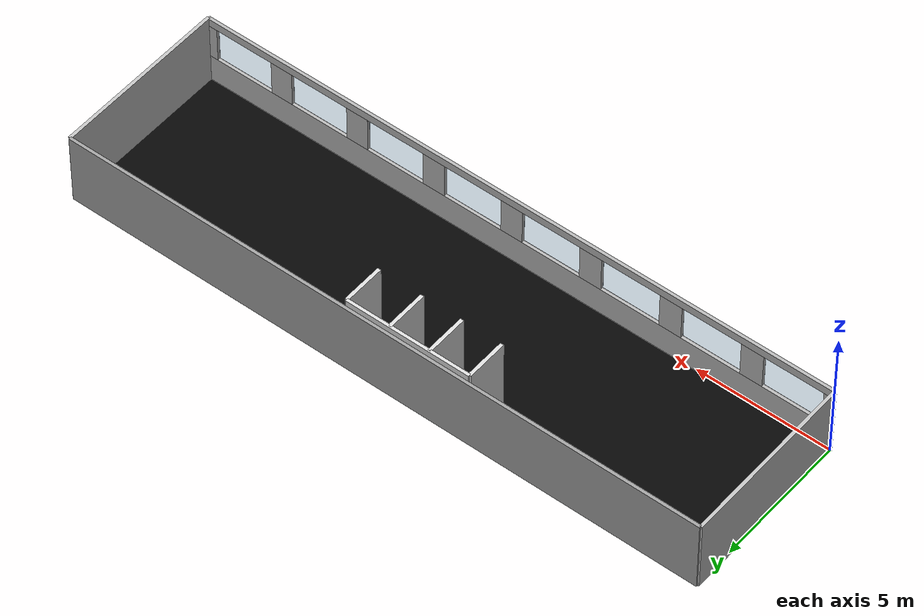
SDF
<sdf version="1.10">
 <world name="room_427_integrated">
  <plugin filename="gz-sim-physics-system" name="gz::sim::systems::Physics"/>
  <plugin filename="gz-sim-user-commands-system" name="gz::sim::systems::UserCommands"/>
  <plugin filename="gz-sim-scene-broadcaster-system" name="gz::sim::systems::SceneBroadcaster"/>
  <gravity>0 0 -9.8</gravity>
  <scene>
   <ambient>0.45 0.45 0.45 1</ambient>
   <background>0.75 0.78 0.82 1</background>
   <shadows>true</shadows>
   <grid>false</grid>
  </scene>
  <light name="main_light" type="directional">
   <pose>0 0 10 0 0 0</pose>
   <diffuse>0.6 0.6 0.6 1</diffuse>
   <specular>0.4 0.4 0.4 1</specular>
   <direction>-0.5 0.5 -1</direction>
  </light>
  <include><name>room_427_shell</name><uri>model://room_427_shell</uri></include>
 </world>
</sdf>

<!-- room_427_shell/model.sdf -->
<sdf version="1.10">
  <model name="room_427_shell">
    <static>true</static>
    <model name="room_427_floor">
      <static>true</static>
      <pose>12.1 3.27 0 0 0 0</pose>
      <link name="floor_link">
        <collision name="floor_collision">
          <geometry>
            <box>
              <size>24.2 6.54 0.03</size>
            </box>
          </geometry>
        </collision>
        <visual name="floor_visual">
          <geometry>
            <box>
              <size>24.2 6.54 0.03</size>
            </box>
          </geometry>
          <material>
            <ambient>0.01 0.01 0.01 1</ambient>
            <diffuse>0.02 0.02 0.02 1</diffuse>
            <specular>0.8 0.8 0.8 1</specular>
            <pbr>
              <metal>
                <metalness>0.0</metalness>
                <roughness>0.18</roughness>
              </metal>
            </pbr>
          </material>
        </visual>
      </link>
    </model>
    <model name="back_wall_D_C">
      <static>true</static>
      <pose>12.1 6.54 1.375 0 0 0</pose>
      <link name="link">
        <collision name="collision">
          <geometry>
            <box>
              <size>24.2 0.12 2.75</size>
            </box>
          </geometry>
        </collision>
        <visual name="visual">
          <geometry>
            <box>
              <size>24.2 0.12 2.75</size>
            </box>
          </geometry>
          <material>
            <ambient>0.62 0.62 0.62 1</ambient>
            <diffuse>0.62 0.62 0.62 1</diffuse>
          </material>
        </visual>
      </link>
    </model>
    <model name="wall_A_C_solid_no_door">
      <static>true</static>
      <pose>24.2 3.27 1.375 0 0 0</pose>
      <link name="link">
        <collision name="collision">
          <geometry>
            <box>
              <size>0.12 6.54 2.75</size>
            </box>
          </geometry>
        </collision>
        <visual name="visual">
          <geometry>
            <box>
              <size>0.12 6.54 2.75</size>
            </box>
          </geometry>
          <material>
            <ambient>0.75 0.75 0.75 1</ambient>
            <diffuse>0.75 0.75 0.75 1</diffuse>
          </material>
        </visual>
      </link>
    </model>
    <model name="B_D_wall_solid_with_door3_panel">
      <static>true</static>
      <pose>0 3.27 1.375 0 0 0</pose>
      <link name="wall_B_D_solid">
        <collision name="collision">
          <geometry>
            <box>
              <size>0.12 6.54 2.75</size>
            </box>
          </geometry>
        </collision>
        <visual name="visual">
          <geometry>
            <box>
              <size>0.12 6.54 2.75</size>
            </box>
          </geometry>
          <material>
            <ambient>0.75 0.75 0.75 1</ambient>
            <diffuse>0.75 0.75 0.75 1</diffuse>
          </material>
        </visual>
      </link>
      <link name="door_3_panel_near_D">
        <pose>0.065 1.5682 -0.16 0 0 0</pose>
        <visual name="visual">
          <geometry>
            <box>
              <size>0.04 0.9144 2.43</size>
            </box>
          </geometry>
          <material>
            <ambient>0.45 0.45 0.45 1</ambient>
            <diffuse>0.45 0.45 0.45 1</diffuse>
          </material>
        </visual>
      </link>
    </model>
    <model name="window_wall_lower_A_B">
      <static>true</static>
      <pose>12.1 0 0.545 0 0 0</pose>
      <link name="link">
        <collision name="collision">
          <geometry>
            <box>
              <size>24.2 0.12 1.09</size>
            </box>
          </geometry>
        </collision>
        <visual name="visual">
          <geometry>
            <box>
              <size>24.2 0.12 1.09</size>
            </box>
          </geometry>
          <material>
            <ambient>0.7 0.7 0.7 1</ambient>
            <diffuse>0.7 0.7 0.7 1</diffuse>
          </material>
        </visual>
      </link>
    </model>
    <model name="window_wall_top_A_B">
      <static>true</static>
      <pose>12.1 0 2.5925 0 0 0</pose>
      <link name="link">
        <collision name="collision">
          <geometry>
            <box>
              <size>24.2 0.12 0.305</size>
            </box>
          </geometry>
        </collision>
        <visual name="visual">
          <geometry>
            <box>
              <size>24.2 0.12 0.305</size>
            </box>
          </geometry>
          <material>
            <ambient>0.7 0.7 0.7 1</ambient>
            <diffuse>0.7 0.7 0.7 1</diffuse>
          </material>
        </visual>
      </link>
    </model>
    <model name="window_wall_vertical_pieces">
      <static>true</static>
      <link name="window_side_left">
        <pose>0.1725 0 1.765 0 0 0</pose>
        <collision name="collision">
          <geometry>
            <box>
              <size>0.345 0.12 1.35</size>
            </box>
          </geometry>
        </collision>
        <visual name="visual">
          <geometry>
            <box>
              <size>0.345 0.12 1.35</size>
            </box>
          </geometry>
          <material>
            <ambient>0.7 0.7 0.7 1</ambient>
            <diffuse>0.7 0.7 0.7 1</diffuse>
          </material>
        </visual>
      </link>
      <link name="window_gap_1">
        <pose>2.97 0 1.765 0 0 0</pose>
        <collision name="collision">
          <geometry>
            <box>
              <size>0.83 0.12 1.35</size>
            </box>
          </geometry>
        </collision>
        <visual name="visual">
          <geometry>
            <box>
              <size>0.83 0.12 1.35</size>
            </box>
          </geometry>
          <material>
            <ambient>0.7 0.7 0.7 1</ambient>
            <diffuse>0.7 0.7 0.7 1</diffuse>
          </material>
        </visual>
      </link>
      <link name="window_gap_2">
        <pose>6.01 0 1.765 0 0 0</pose>
        <collision name="collision">
          <geometry>
            <box>
              <size>0.83 0.12 1.35</size>
            </box>
          </geometry>
        </collision>
        <visual name="visual">
          <geometry>
            <box>
              <size>0.83 0.12 1.35</size>
            </box>
          </geometry>
          <material>
            <ambient>0.7 0.7 0.7 1</ambient>
            <diffuse>0.7 0.7 0.7 1</diffuse>
          </material>
        </visual>
      </link>
      <link name="window_gap_3">
        <pose>9.05 0 1.765 0 0 0</pose>
        <collision name="collision">
          <geometry>
            <box>
              <size>0.83 0.12 1.35</size>
            </box>
          </geometry>
        </collision>
        <visual name="visual">
          <geometry>
            <box>
              <size>0.83 0.12 1.35</size>
            </box>
          </geometry>
          <material>
            <ambient>0.7 0.7 0.7 1</ambient>
            <diffuse>0.7 0.7 0.7 1</diffuse>
          </material>
        </visual>
      </link>
      <link name="window_gap_4">
        <pose>12.09 0 1.765 0 0 0</pose>
        <collision name="collision">
          <geometry>
            <box>
              <size>0.83 0.12 1.35</size>
            </box>
          </geometry>
        </collision>
        <visual name="visual">
          <geometry>
            <box>
              <size>0.83 0.12 1.35</size>
            </box>
          </geometry>
          <material>
            <ambient>0.7 0.7 0.7 1</ambient>
            <diffuse>0.7 0.7 0.7 1</diffuse>
          </material>
        </visual>
      </link>
      <link name="window_gap_5">
        <pose>15.13 0 1.765 0 0 0</pose>
        <collision name="collision">
          <geometry>
            <box>
              <size>0.83 0.12 1.35</size>
            </box>
          </geometry>
        </collision>
        <visual name="visual">
          <geometry>
            <box>
              <size>0.83 0.12 1.35</size>
            </box>
          </geometry>
          <material>
            <ambient>0.7 0.7 0.7 1</ambient>
            <diffuse>0.7 0.7 0.7 1</diffuse>
          </material>
        </visual>
      </link>
      <link name="window_gap_6">
        <pose>18.17 0 1.765 0 0 0</pose>
        <collision name="collision">
          <geometry>
            <box>
              <size>0.83 0.12 1.35</size>
            </box>
          </geometry>
        </collision>
        <visual name="visual">
          <geometry>
            <box>
              <size>0.83 0.12 1.35</size>
            </box>
          </geometry>
          <material>
            <ambient>0.7 0.7 0.7 1</ambient>
            <diffuse>0.7 0.7 0.7 1</diffuse>
          </material>
        </visual>
      </link>
      <link name="window_gap_7">
        <pose>21.21 0 1.765 0 0 0</pose>
        <collision name="collision">
          <geometry>
            <box>
              <size>0.83 0.12 1.35</size>
            </box>
          </geometry>
        </collision>
        <visual name="visual">
          <geometry>
            <box>
              <size>0.83 0.12 1.35</size>
            </box>
          </geometry>
          <material>
            <ambient>0.7 0.7 0.7 1</ambient>
            <diffuse>0.7 0.7 0.7 1</diffuse>
          </material>
        </visual>
      </link>
      <link name="window_side_right">
        <pose>24.0175 0 1.765 0 0 0</pose>
        <collision name="collision">
          <geometry>
            <box>
              <size>0.365 0.12 1.35</size>
            </box>
          </geometry>
        </collision>
        <visual name="visual">
          <geometry>
            <box>
              <size>0.365 0.12 1.35</size>
            </box>
          </geometry>
          <material>
            <ambient>0.7 0.7 0.7 1</ambient>
            <diffuse>0.7 0.7 0.7 1</diffuse>
          </material>
        </visual>
      </link>
    </model>
    <model name="window_glass_panes">
      <static>true</static>
      <link name="window_1">
        <pose>1.45 -0.07 1.765 0 0 0</pose>
        <visual name="visual">
          <geometry>
            <box>
              <size>2.21 0.03 1.35</size>
            </box>
          </geometry>
          <material>
            <ambient>0.55 0.75 0.9 0.35</ambient>
            <diffuse>0.55 0.75 0.9 0.35</diffuse>
            <specular>0.8 0.8 0.8 1</specular>
          </material>
          <transparency>0.55</transparency>
        </visual>
      </link>
      <link name="window_2">
        <pose>4.49 -0.07 1.765 0 0 0</pose>
        <visual name="visual">
          <geometry>
            <box>
              <size>2.21 0.03 1.35</size>
            </box>
          </geometry>
          <material>
            <ambient>0.55 0.75 0.9 0.35</ambient>
            <diffuse>0.55 0.75 0.9 0.35</diffuse>
            <specular>0.8 0.8 0.8 1</specular>
          </material>
          <transparency>0.55</transparency>
        </visual>
      </link>
      <link name="window_3">
        <pose>7.53 -0.07 1.765 0 0 0</pose>
        <visual name="visual">
          <geometry>
            <box>
              <size>2.21 0.03 1.35</size>
            </box>
          </geometry>
          <material>
            <ambient>0.55 0.75 0.9 0.35</ambient>
            <diffuse>0.55 0.75 0.9 0.35</diffuse>
            <specular>0.8 0.8 0.8 1</specular>
          </material>
          <transparency>0.55</transparency>
        </visual>
      </link>
      <link name="window_4">
        <pose>10.57 -0.07 1.765 0 0 0</pose>
        <visual name="visual">
          <geometry>
            <box>
              <size>2.21 0.03 1.35</size>
            </box>
          </geometry>
          <material>
            <ambient>0.55 0.75 0.9 0.35</ambient>
            <diffuse>0.55 0.75 0.9 0.35</diffuse>
            <specular>0.8 0.8 0.8 1</specular>
          </material>
          <transparency>0.55</transparency>
        </visual>
      </link>
      <link name="window_5">
        <pose>13.61 -0.07 1.765 0 0 0</pose>
        <visual name="visual">
          <geometry>
            <box>
              <size>2.21 0.03 1.35</size>
            </box>
          </geometry>
          <material>
            <ambient>0.55 0.75 0.9 0.35</ambient>
            <diffuse>0.55 0.75 0.9 0.35</diffuse>
            <specular>0.8 0.8 0.8 1</specular>
          </material>
          <transparency>0.55</transparency>
        </visual>
      </link>
      <link name="window_6">
        <pose>16.65 -0.07 1.765 0 0 0</pose>
        <visual name="visual">
          <geometry>
            <box>
              <size>2.21 0.03 1.35</size>
            </box>
          </geometry>
          <material>
            <ambient>0.55 0.75 0.9 0.35</ambient>
            <diffuse>0.55 0.75 0.9 0.35</diffuse>
            <specular>0.8 0.8 0.8 1</specular>
          </material>
          <transparency>0.55</transparency>
        </visual>
      </link>
      <link name="window_7">
        <pose>19.69 -0.07 1.765 0 0 0</pose>
        <visual name="visual">
          <geometry>
            <box>
              <size>2.21 0.03 1.35</size>
            </box>
          </geometry>
          <material>
            <ambient>0.55 0.75 0.9 0.35</ambient>
            <diffuse>0.55 0.75 0.9 0.35</diffuse>
            <specular>0.8 0.8 0.8 1</specular>
          </material>
          <transparency>0.55</transparency>
        </visual>
      </link>
      <link name="window_8">
        <pose>22.73 -0.07 1.765 0 0 0</pose>
        <visual name="visual">
          <geometry>
            <box>
              <size>2.21 0.03 1.35</size>
            </box>
          </geometry>
          <material>
            <ambient>0.55 0.75 0.9 0.35</ambient>
            <diffuse>0.55 0.75 0.9 0.35</diffuse>
            <specular>0.8 0.8 0.8 1</specular>
          </material>
          <transparency>0.55</transparency>
        </visual>
      </link>
    </model>
    <model name="doors_and_connected_boxes_on_D_C_wall">
      <static>true</static>
      <link name="door_1_panel_D_C_wall">
        <pose>21.7 6.47 1.215 0 0 0</pose>
        <visual name="visual">
          <geometry>
            <box>
              <size>1.72 0.04 2.43</size>
            </box>
          </geometry>
          <material>
            <ambient>0.45 0.45 0.45 1</ambient>
            <diffuse>0.45 0.45 0.45 1</diffuse>
          </material>
        </visual>
      </link>
      <link name="door_2_panel_D_C_wall">
        <pose>14.0 6.47 1.215 0 0 0</pose>
        <visual name="visual">
          <geometry>
            <box>
              <size>1.83 0.04 2.43</size>
            </box>
          </geometry>
          <material>
            <ambient>0.45 0.45 0.45 1</ambient>
            <diffuse>0.45 0.45 0.45 1</diffuse>
          </material>
        </visual>
      </link>
      <link name="boxes_back_wall">
        <pose>11.1 6.27 1.375 0 0 0</pose>
        <collision name="collision">
          <geometry>
            <box>
              <size>4.699 0.12 2.75</size>
            </box>
          </geometry>
        </collision>
        <visual name="visual">
          <geometry>
            <box>
              <size>4.699 0.12 2.75</size>
            </box>
          </geometry>
          <material>
            <ambient>0.85 0.85 0.85 1</ambient>
            <diffuse>0.85 0.85 0.85 1</diffuse>
          </material>
        </visual>
      </link>
      <link name="boxes_left_side">
        <pose>8.75 5.50 1.375 0 0 0</pose>
        <collision name="collision">
          <geometry>
            <box>
              <size>0.127 1.549 2.75</size>
            </box>
          </geometry>
        </collision>
        <visual name="visual">
          <geometry>
            <box>
              <size>0.127 1.549 2.75</size>
            </box>
          </geometry>
          <material>
            <ambient>0.85 0.85 0.85 1</ambient>
            <diffuse>0.85 0.85 0.85 1</diffuse>
          </material>
        </visual>
      </link>
      <link name="boxes_divider_1">
        <pose>10.27 5.50 1.375 0 0 0</pose>
        <collision name="collision">
          <geometry>
            <box>
              <size>0.127 1.549 2.75</size>
            </box>
          </geometry>
        </collision>
        <visual name="visual">
          <geometry>
            <box>
              <size>0.127 1.549 2.75</size>
            </box>
          </geometry>
          <material>
            <ambient>0.85 0.85 0.85 1</ambient>
            <diffuse>0.85 0.85 0.85 1</diffuse>
          </material>
        </visual>
      </link>
      <link name="boxes_divider_2">
        <pose>11.79 5.50 1.375 0 0 0</pose>
        <collision name="collision">
          <geometry>
            <box>
              <size>0.127 1.549 2.75</size>
            </box>
          </geometry>
        </collision>
        <visual name="visual">
          <geometry>
            <box>
              <size>0.127 1.549 2.75</size>
            </box>
          </geometry>
          <material>
            <ambient>0.85 0.85 0.85 1</ambient>
            <diffuse>0.85 0.85 0.85 1</diffuse>
          </material>
        </visual>
      </link>
      <link name="boxes_right_side">
        <pose>13.45 5.50 1.375 0 0 0</pose>
        <collision name="collision">
          <geometry>
            <box>
              <size>0.127 1.549 2.75</size>
            </box>
          </geometry>
        </collision>
        <visual name="visual">
          <geometry>
            <box>
              <size>0.127 1.549 2.75</size>
            </box>
          </geometry>
          <material>
            <ambient>0.85 0.85 0.85 1</ambient>
            <diffuse>0.85 0.85 0.85 1</diffuse>
          </material>
        </visual>
      </link>
      <link name="box_1_blue_panel">
        <pose>9.51 6.20 1.35 0 0 0</pose>
        <visual name="visual">
          <geometry>
            <box>
              <size>1.397 0.03 2.50</size>
            </box>
          </geometry>
          <material>
            <ambient>0.0 0.16 0.35 1</ambient>
            <diffuse>0.0 0.16 0.35 1</diffuse>
          </material>
        </visual>
      </link>
      <link name="box_2_blue_panel">
        <pose>11.03 6.20 1.35 0 0 0</pose>
        <visual name="visual">
          <geometry>
            <box>
              <size>1.397 0.03 2.50</size>
            </box>
          </geometry>
          <material>
            <ambient>0.0 0.16 0.35 1</ambient>
            <diffuse>0.0 0.16 0.35 1</diffuse>
          </material>
        </visual>
      </link>
      <link name="box_3_blue_panel">
        <pose>12.55 6.20 1.35 0 0 0</pose>
        <visual name="visual">
          <geometry>
            <box>
              <size>1.397 0.03 2.50</size>
            </box>
          </geometry>
          <material>
            <ambient>0.0 0.16 0.35 1</ambient>
            <diffuse>0.0 0.16 0.35 1</diffuse>
          </material>
        </visual>
      </link>
    </model>
  </model>
</sdf>
